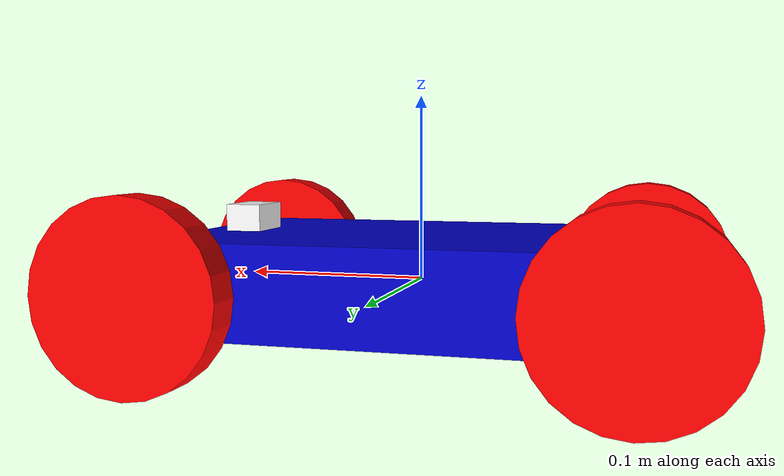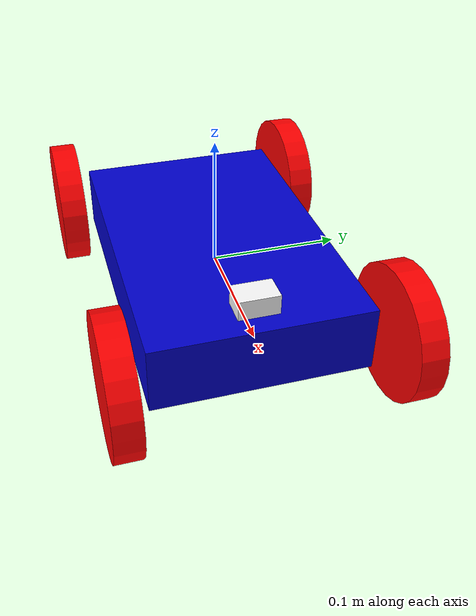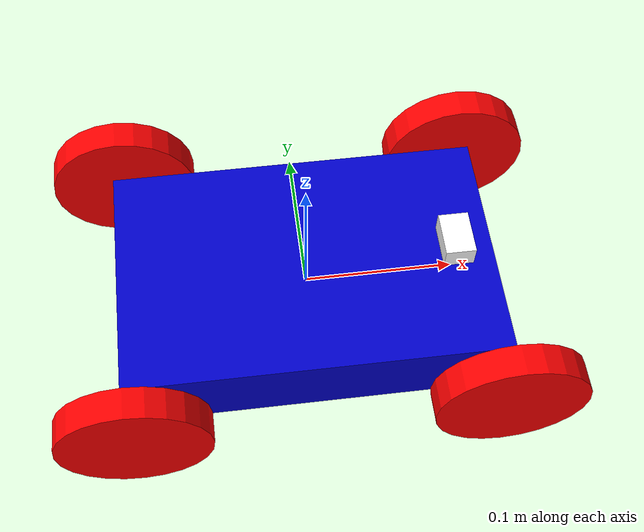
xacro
<?xml version="1.0"?>
<robot name="mickrobot" xmlns:xacro="http://www.ros.org/wiki/xacro">
  <link name="base_link">
    <visual>
      <geometry>
        <box size="0.25 .16 .05"/>
    </geometry>
    <origin rpy="0 0 0" xyz="0 0 0.0"/>
    <material name="gree">
        <color rgba="0 0 .8 1"/>
    </material>
    </visual>
  </link>

  <xacro:macro name="wheel_link" params="wheel_name xyz">
	 <link name="${wheel_name}_link">
	    <visual>
	      <geometry>
		<cylinder length=".02" radius="0.05"/>
	      </geometry>
	      <material name="red">
		<color rgba="1 0 0 1"/>
	      </material>
	    </visual>
	  </link>

	  <joint name="${wheel_name}_joint" type="continuous">
	    <axis xyz="0 0 1"/>
	    <parent link="base_link"/>
	    <child link="${wheel_name}_link"/>
	    <origin rpy="1.57075 0 0" xyz="${xyz}"/>
	    <limit effort="100" velocity="100"/>
	    <joint_properties damping="0.0" friction="0.0"/>
	  </joint>
  </xacro:macro>

  <xacro:wheel_link wheel_name = "left_front_wheel" xyz="0.12 0.1 0"/>
  <xacro:wheel_link wheel_name = "right_front_wheel" xyz="0.12 -0.1 0"/>
  <xacro:wheel_link wheel_name = "right_back_wheel" xyz="-0.12 -0.1 0"/>
  <xacro:wheel_link wheel_name = "left_back_wheel" xyz="-0.12 0.1 0"/>

  <link name="camera">
    <visual>
      <geometry>
        <box size=".02 .03 .03"/>
      </geometry>
      <material name="white">
          <color rgba="1 1 1 1"/>
      </material>
    </visual>
  </link>

  <joint name="camera_joint" type="fixed">
    <parent link="base_link"/>
    <child link="camera"/>
    <origin xyz="0.1 0.0 0.025"/>
  </joint>

</robot>
